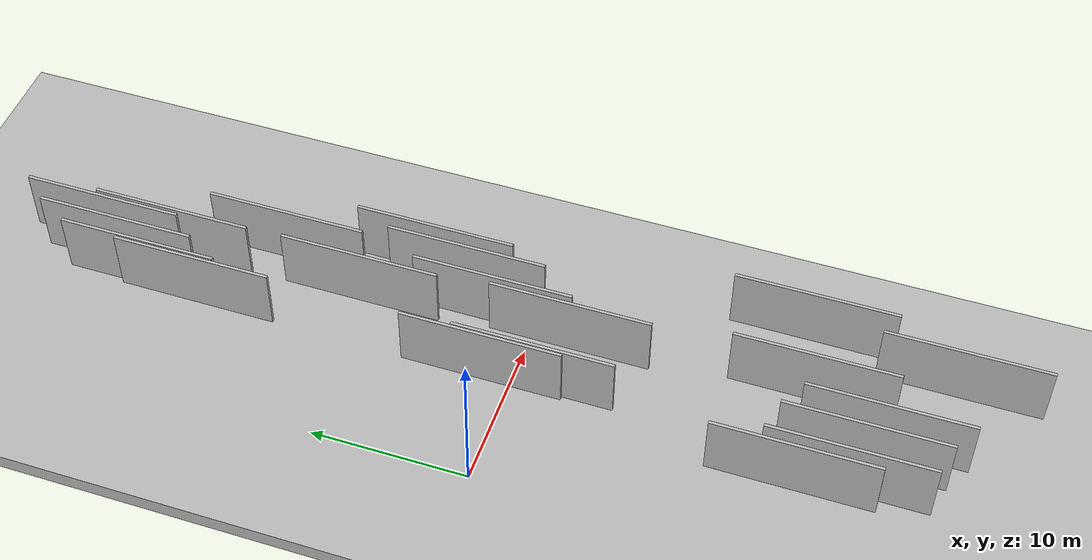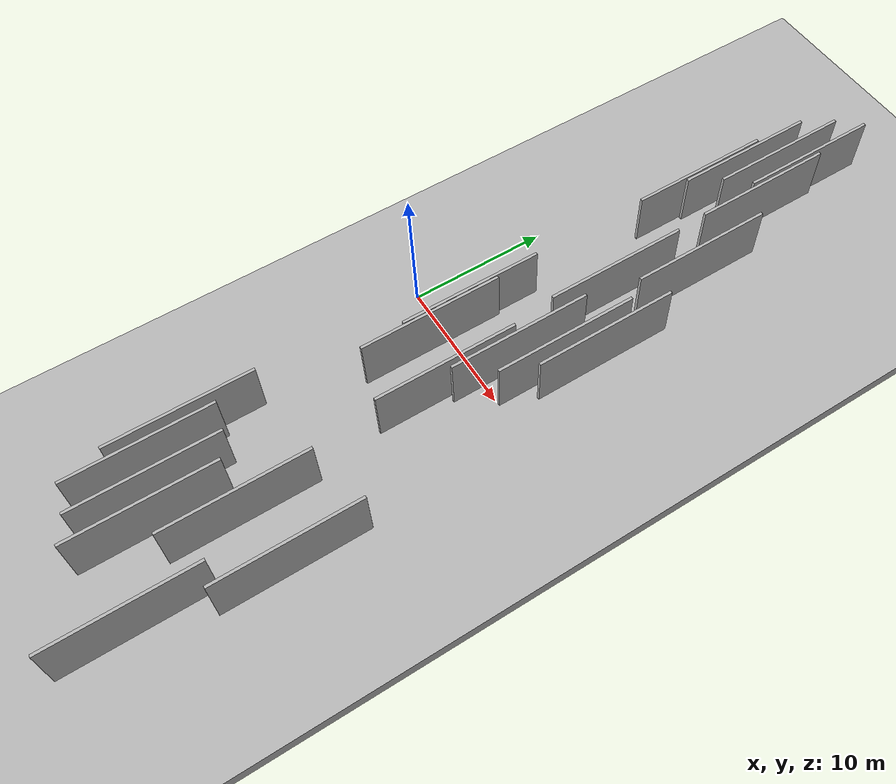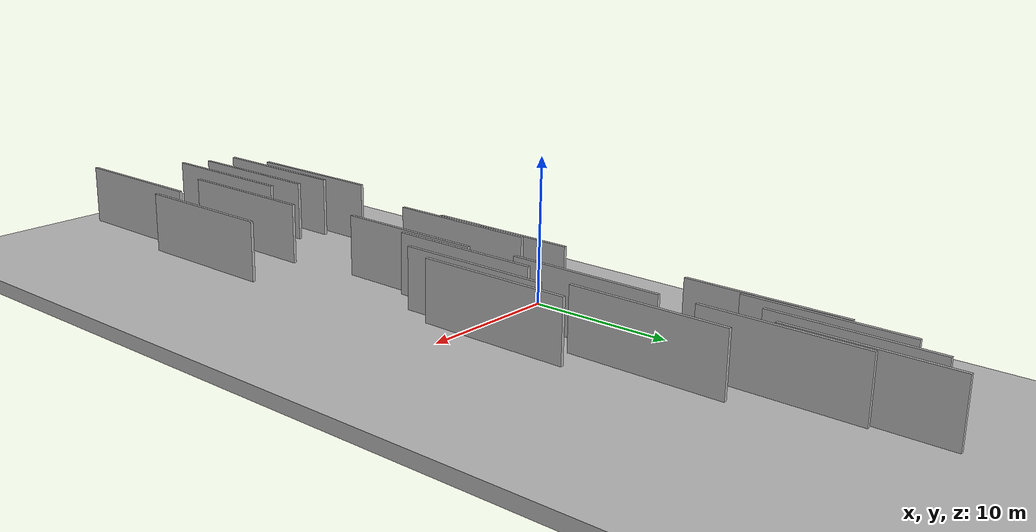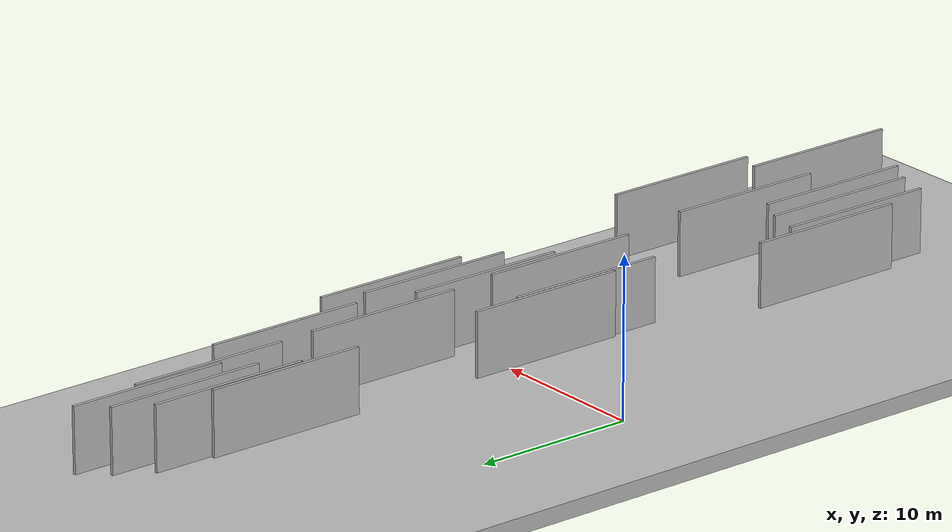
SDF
<?xml version="1.0" encoding="utf-8"?>

<sdf version="1.6">

   <world name="default">

      <gui fullscreen="0">

         <camera name="user_camera">

            <pose>-15 0 4.57585 0 0 0</pose>

            <view_controller>orbit</view_controller>

         </camera>

      </gui>

      <scene>

         <sky>

           <clouds>

             <speed>12</speed>

           </clouds>

         </sky>

         <ambient>0.4 0.4 0.4 1</ambient>

         <background>0.7 0.7 0.7 1</background>

         <shadows>1</shadows>

      </scene>

      <gravity>0 0 -9.8066</gravity>

      <magnetic_field>6e-06 2.3e-05 -4.2e-05</magnetic_field>

      <physics default="0" name="default_physics" type="ode">

         <ode>

            <solver>

               <type>quick</type>

               <iters>10</iters>

               <sor>1.0</sor>

               <use_dynamic_moi_rescaling>0</use_dynamic_moi_rescaling>

            </solver>

            <constraints>

               <cfm>0</cfm>

               <erp>0.2</erp>

               <contact_max_correcting_vel>100</contact_max_correcting_vel>

               <contact_surface_layer>0.001</contact_surface_layer>

            </constraints>

         </ode>

         <max_step_size>0.004</max_step_size>

         <real_time_factor>1</real_time_factor>

         <real_time_update_rate>250</real_time_update_rate>

      </physics>

      <light name="sun" type="directional">

         <cast_shadows>1</cast_shadows>

         <pose>0 0 10 0 0 0</pose>

         <diffuse>0.8 0.8 0.8 1</diffuse>

         <specular>0.2 0.2 0.2 1</specular>

         <attenuation>

            <range>1000</range>

            <constant>0.9</constant>

            <linear>0.01</linear>

            <quadratic>0.001</quadratic>

         </attenuation>

         <direction>-0.5 0.1 -0.9</direction>

      </light>

      <include>

         <name>ground_plane_1</name>

         <uri>model://HANNAS_ground_plane</uri>

         <pose>0 0 0  0 0 0</pose>

      </include>

      <include>

         <name>ground_plane_2</name>

         <uri>model://HANNAS_ground_plane</uri>

         <pose>100 0 0  0 0 0</pose>

      </include>

      <model name="HANNAS_wall_1">

         <static>1</static>

         <pose frame="">10.1915 -17.6369 2.5 0.000000 0.000000 1.570796</pose>

         <link name="link">

            <pose frame="">0 0 2.00 0 0 0</pose>

            <collision name="collision">

               <geometry>

                  <box>

                     <size>10.00 0.2 4.00</size>

                  </box>

               </geometry>

               <max_contacts>10</max_contacts>

               <surface>

                  <contact>

                     <ode/>

                  </contact>

                  <bounce/>

                  <friction>

                     <torsional>

                        <ode/>

                     </torsional>

                     <ode/>

                  </friction>

               </surface>

            </collision>

            <visual name="visual">

               <cast_shadows>0</cast_shadows>

               <geometry>

                  <box>

                     <size>10.00 0.2 4.00</size>

                  </box>

               </geometry>

               <material>

                  <script>

                     <uri>model://HANNAS_wall/materials/scripts</uri>

                     <uri>model://HANNAS_wall/materials/textures</uri>

                     <name>vrc/HANNAS_wall</name>

                  </script>

               </material>

            </visual>

            <self_collide>0</self_collide>

            <enable_wind>0</enable_wind>

            <kinematic>0</kinematic>

         </link>

      </model>

      <model name="HANNAS_wall_2">

         <static>1</static>

         <pose frame="">13.1539 -25.8379 2.5 0.000000 0.000000 1.570796</pose>

         <link name="link">

            <pose frame="">0 0 2.00 0 0 0</pose>

            <collision name="collision">

               <geometry>

                  <box>

                     <size>10.00 0.2 4.00</size>

                  </box>

               </geometry>

               <max_contacts>10</max_contacts>

               <surface>

                  <contact>

                     <ode/>

                  </contact>

                  <bounce/>

                  <friction>

                     <torsional>

                        <ode/>

                     </torsional>

                     <ode/>

                  </friction>

               </surface>

            </collision>

            <visual name="visual">

               <cast_shadows>0</cast_shadows>

               <geometry>

                  <box>

                     <size>10.00 0.2 4.00</size>

                  </box>

               </geometry>

               <material>

                  <script>

                     <uri>model://HANNAS_wall/materials/scripts</uri>

                     <uri>model://HANNAS_wall/materials/textures</uri>

                     <name>vrc/HANNAS_wall</name>

                  </script>

               </material>

            </visual>

            <self_collide>0</self_collide>

            <enable_wind>0</enable_wind>

            <kinematic>0</kinematic>

         </link>

      </model>

      <model name="HANNAS_wall_3">

         <static>1</static>

         <pose frame="">5.4535 19.5235 2.5 0.000000 0.000000 1.570796</pose>

         <link name="link">

            <pose frame="">0 0 2.00 0 0 0</pose>

            <collision name="collision">

               <geometry>

                  <box>

                     <size>10.00 0.2 4.00</size>

                  </box>

               </geometry>

               <max_contacts>10</max_contacts>

               <surface>

                  <contact>

                     <ode/>

                  </contact>

                  <bounce/>

                  <friction>

                     <torsional>

                        <ode/>

                     </torsional>

                     <ode/>

                  </friction>

               </surface>

            </collision>

            <visual name="visual">

               <cast_shadows>0</cast_shadows>

               <geometry>

                  <box>

                     <size>10.00 0.2 4.00</size>

                  </box>

               </geometry>

               <material>

                  <script>

                     <uri>model://HANNAS_wall/materials/scripts</uri>

                     <uri>model://HANNAS_wall/materials/textures</uri>

                     <name>vrc/HANNAS_wall</name>

                  </script>

               </material>

            </visual>

            <self_collide>0</self_collide>

            <enable_wind>0</enable_wind>

            <kinematic>0</kinematic>

         </link>

      </model>

      <model name="HANNAS_wall_4">

         <static>1</static>

         <pose frame="">14.6187 -16.5782 2.5 0.000000 0.000000 1.570796</pose>

         <link name="link">

            <pose frame="">0 0 2.00 0 0 0</pose>

            <collision name="collision">

               <geometry>

                  <box>

                     <size>10.00 0.2 4.00</size>

                  </box>

               </geometry>

               <max_contacts>10</max_contacts>

               <surface>

                  <contact>

                     <ode/>

                  </contact>

                  <bounce/>

                  <friction>

                     <torsional>

                        <ode/>

                     </torsional>

                     <ode/>

                  </friction>

               </surface>

            </collision>

            <visual name="visual">

               <cast_shadows>0</cast_shadows>

               <geometry>

                  <box>

                     <size>10.00 0.2 4.00</size>

                  </box>

               </geometry>

               <material>

                  <script>

                     <uri>model://HANNAS_wall/materials/scripts</uri>

                     <uri>model://HANNAS_wall/materials/textures</uri>

                     <name>vrc/HANNAS_wall</name>

                  </script>

               </material>

            </visual>

            <self_collide>0</self_collide>

            <enable_wind>0</enable_wind>

            <kinematic>0</kinematic>

         </link>

      </model>

      <model name="HANNAS_wall_5">

         <static>1</static>

         <pose frame="">9.8254 1.9844 2.5 0.000000 0.000000 1.570796</pose>

         <link name="link">

            <pose frame="">0 0 2.00 0 0 0</pose>

            <collision name="collision">

               <geometry>

                  <box>

                     <size>10.00 0.2 4.00</size>

                  </box>

               </geometry>

               <max_contacts>10</max_contacts>

               <surface>

                  <contact>

                     <ode/>

                  </contact>

                  <bounce/>

                  <friction>

                     <torsional>

                        <ode/>

                     </torsional>

                     <ode/>

                  </friction>

               </surface>

            </collision>

            <visual name="visual">

               <cast_shadows>0</cast_shadows>

               <geometry>

                  <box>

                     <size>10.00 0.2 4.00</size>

                  </box>

               </geometry>

               <material>

                  <script>

                     <uri>model://HANNAS_wall/materials/scripts</uri>

                     <uri>model://HANNAS_wall/materials/textures</uri>

                     <name>vrc/HANNAS_wall</name>

                  </script>

               </material>

            </visual>

            <self_collide>0</self_collide>

            <enable_wind>0</enable_wind>

            <kinematic>0</kinematic>

         </link>

      </model>

      <model name="HANNAS_wall_6">

         <static>1</static>

         <pose frame="">5.7370 23.1945 2.5 0.000000 0.000000 1.570796</pose>

         <link name="link">

            <pose frame="">0 0 2.00 0 0 0</pose>

            <collision name="collision">

               <geometry>

                  <box>

                     <size>10.00 0.2 4.00</size>

                  </box>

               </geometry>

               <max_contacts>10</max_contacts>

               <surface>

                  <contact>

                     <ode/>

                  </contact>

                  <bounce/>

                  <friction>

                     <torsional>

                        <ode/>

                     </torsional>

                     <ode/>

                  </friction>

               </surface>

            </collision>

            <visual name="visual">

               <cast_shadows>0</cast_shadows>

               <geometry>

                  <box>

                     <size>10.00 0.2 4.00</size>

                  </box>

               </geometry>

               <material>

                  <script>

                     <uri>model://HANNAS_wall/materials/scripts</uri>

                     <uri>model://HANNAS_wall/materials/textures</uri>

                     <name>vrc/HANNAS_wall</name>

                  </script>

               </material>

            </visual>

            <self_collide>0</self_collide>

            <enable_wind>0</enable_wind>

            <kinematic>0</kinematic>

         </link>

      </model>

      <model name="HANNAS_wall_7">

         <static>1</static>

         <pose frame="">6.9588 25.2587 2.5 0.000000 0.000000 1.570796</pose>

         <link name="link">

            <pose frame="">0 0 2.00 0 0 0</pose>

            <collision name="collision">

               <geometry>

                  <box>

                     <size>10.00 0.2 4.00</size>

                  </box>

               </geometry>

               <max_contacts>10</max_contacts>

               <surface>

                  <contact>

                     <ode/>

                  </contact>

                  <bounce/>

                  <friction>

                     <torsional>

                        <ode/>

                     </torsional>

                     <ode/>

                  </friction>

               </surface>

            </collision>

            <visual name="visual">

               <cast_shadows>0</cast_shadows>

               <geometry>

                  <box>

                     <size>10.00 0.2 4.00</size>

                  </box>

               </geometry>

               <material>

                  <script>

                     <uri>model://HANNAS_wall/materials/scripts</uri>

                     <uri>model://HANNAS_wall/materials/textures</uri>

                     <name>vrc/HANNAS_wall</name>

                  </script>

               </material>

            </visual>

            <self_collide>0</self_collide>

            <enable_wind>0</enable_wind>

            <kinematic>0</kinematic>

         </link>

      </model>

      <model name="HANNAS_wall_8">

         <static>1</static>

         <pose frame="">12.5644 6.6030 2.5 0.000000 0.000000 1.570796</pose>

         <link name="link">

            <pose frame="">0 0 2.00 0 0 0</pose>

            <collision name="collision">

               <geometry>

                  <box>

                     <size>10.00 0.2 4.00</size>

                  </box>

               </geometry>

               <max_contacts>10</max_contacts>

               <surface>

                  <contact>

                     <ode/>

                  </contact>

                  <bounce/>

                  <friction>

                     <torsional>

                        <ode/>

                     </torsional>

                     <ode/>

                  </friction>

               </surface>

            </collision>

            <visual name="visual">

               <cast_shadows>0</cast_shadows>

               <geometry>

                  <box>

                     <size>10.00 0.2 4.00</size>

                  </box>

               </geometry>

               <material>

                  <script>

                     <uri>model://HANNAS_wall/materials/scripts</uri>

                     <uri>model://HANNAS_wall/materials/textures</uri>

                     <name>vrc/HANNAS_wall</name>

                  </script>

               </material>

            </visual>

            <self_collide>0</self_collide>

            <enable_wind>0</enable_wind>

            <kinematic>0</kinematic>

         </link>

      </model>

      <model name="HANNAS_wall_9">

         <static>1</static>

         <pose frame="">10.6822 15.5654 2.5 0.000000 0.000000 1.570796</pose>

         <link name="link">

            <pose frame="">0 0 2.00 0 0 0</pose>

            <collision name="collision">

               <geometry>

                  <box>

                     <size>10.00 0.2 4.00</size>

                  </box>

               </geometry>

               <max_contacts>10</max_contacts>

               <surface>

                  <contact>

                     <ode/>

                  </contact>

                  <bounce/>

                  <friction>

                     <torsional>

                        <ode/>

                     </torsional>

                     <ode/>

                  </friction>

               </surface>

            </collision>

            <visual name="visual">

               <cast_shadows>0</cast_shadows>

               <geometry>

                  <box>

                     <size>10.00 0.2 4.00</size>

                  </box>

               </geometry>

               <material>

                  <script>

                     <uri>model://HANNAS_wall/materials/scripts</uri>

                     <uri>model://HANNAS_wall/materials/textures</uri>

                     <name>vrc/HANNAS_wall</name>

                  </script>

               </material>

            </visual>

            <self_collide>0</self_collide>

            <enable_wind>0</enable_wind>

            <kinematic>0</kinematic>

         </link>

      </model>

      <model name="HANNAS_wall_10">

         <static>1</static>

         <pose frame="">6.2647 -21.4717 2.5 0.000000 0.000000 1.570796</pose>

         <link name="link">

            <pose frame="">0 0 2.00 0 0 0</pose>

            <collision name="collision">

               <geometry>

                  <box>

                     <size>10.00 0.2 4.00</size>

                  </box>

               </geometry>

               <max_contacts>10</max_contacts>

               <surface>

                  <contact>

                     <ode/>

                  </contact>

                  <bounce/>

                  <friction>

                     <torsional>

                        <ode/>

                     </torsional>

                     <ode/>

                  </friction>

               </surface>

            </collision>

            <visual name="visual">

               <cast_shadows>0</cast_shadows>

               <geometry>

                  <box>

                     <size>10.00 0.2 4.00</size>

                  </box>

               </geometry>

               <material>

                  <script>

                     <uri>model://HANNAS_wall/materials/scripts</uri>

                     <uri>model://HANNAS_wall/materials/textures</uri>

                     <name>vrc/HANNAS_wall</name>

                  </script>

               </material>

            </visual>

            <self_collide>0</self_collide>

            <enable_wind>0</enable_wind>

            <kinematic>0</kinematic>

         </link>

      </model>

      <model name="HANNAS_wall_11">

         <static>1</static>

         <pose frame="">7.9480 -22.4213 2.5 0.000000 0.000000 1.570796</pose>

         <link name="link">

            <pose frame="">0 0 2.00 0 0 0</pose>

            <collision name="collision">

               <geometry>

                  <box>

                     <size>10.00 0.2 4.00</size>

                  </box>

               </geometry>

               <max_contacts>10</max_contacts>

               <surface>

                  <contact>

                     <ode/>

                  </contact>

                  <bounce/>

                  <friction>

                     <torsional>

                        <ode/>

                     </torsional>

                     <ode/>

                  </friction>

               </surface>

            </collision>

            <visual name="visual">

               <cast_shadows>0</cast_shadows>

               <geometry>

                  <box>

                     <size>10.00 0.2 4.00</size>

                  </box>

               </geometry>

               <material>

                  <script>

                     <uri>model://HANNAS_wall/materials/scripts</uri>

                     <uri>model://HANNAS_wall/materials/textures</uri>

                     <name>vrc/HANNAS_wall</name>

                  </script>

               </material>

            </visual>

            <self_collide>0</self_collide>

            <enable_wind>0</enable_wind>

            <kinematic>0</kinematic>

         </link>

      </model>

      <model name="HANNAS_wall_12">

         <static>1</static>

         <pose frame="">8.3317 26.7676 2.5 0.000000 0.000000 1.570796</pose>

         <link name="link">

            <pose frame="">0 0 2.00 0 0 0</pose>

            <collision name="collision">

               <geometry>

                  <box>

                     <size>10.00 0.2 4.00</size>

                  </box>

               </geometry>

               <max_contacts>10</max_contacts>

               <surface>

                  <contact>

                     <ode/>

                  </contact>

                  <bounce/>

                  <friction>

                     <torsional>

                        <ode/>

                     </torsional>

                     <ode/>

                  </friction>

               </surface>

            </collision>

            <visual name="visual">

               <cast_shadows>0</cast_shadows>

               <geometry>

                  <box>

                     <size>10.00 0.2 4.00</size>

                  </box>

               </geometry>

               <material>

                  <script>

                     <uri>model://HANNAS_wall/materials/scripts</uri>

                     <uri>model://HANNAS_wall/materials/textures</uri>

                     <name>vrc/HANNAS_wall</name>

                  </script>

               </material>

            </visual>

            <self_collide>0</self_collide>

            <enable_wind>0</enable_wind>

            <kinematic>0</kinematic>

         </link>

      </model>

      <model name="HANNAS_wall_13">

         <static>1</static>

         <pose frame="">11.5976 4.2517 2.5 0.000000 0.000000 1.570796</pose>

         <link name="link">

            <pose frame="">0 0 2.00 0 0 0</pose>

            <collision name="collision">

               <geometry>

                  <box>

                     <size>10.00 0.2 4.00</size>

                  </box>

               </geometry>

               <max_contacts>10</max_contacts>

               <surface>

                  <contact>

                     <ode/>

                  </contact>

                  <bounce/>

                  <friction>

                     <torsional>

                        <ode/>

                     </torsional>

                     <ode/>

                  </friction>

               </surface>

            </collision>

            <visual name="visual">

               <cast_shadows>0</cast_shadows>

               <geometry>

                  <box>

                     <size>10.00 0.2 4.00</size>

                  </box>

               </geometry>

               <material>

                  <script>

                     <uri>model://HANNAS_wall/materials/scripts</uri>

                     <uri>model://HANNAS_wall/materials/textures</uri>

                     <name>vrc/HANNAS_wall</name>

                  </script>

               </material>

            </visual>

            <self_collide>0</self_collide>

            <enable_wind>0</enable_wind>

            <kinematic>0</kinematic>

         </link>

      </model>

      <model name="HANNAS_wall_14">

         <static>1</static>

         <pose frame="">9.2960 -3.0367 2.5 0.000000 0.000000 1.570796</pose>

         <link name="link">

            <pose frame="">0 0 2.00 0 0 0</pose>

            <collision name="collision">

               <geometry>

                  <box>

                     <size>10.00 0.2 4.00</size>

                  </box>

               </geometry>

               <max_contacts>10</max_contacts>

               <surface>

                  <contact>

                     <ode/>

                  </contact>

                  <bounce/>

                  <friction>

                     <torsional>

                        <ode/>

                     </torsional>

                     <ode/>

                  </friction>

               </surface>

            </collision>

            <visual name="visual">

               <cast_shadows>0</cast_shadows>

               <geometry>

                  <box>

                     <size>10.00 0.2 4.00</size>

                  </box>

               </geometry>

               <material>

                  <script>

                     <uri>model://HANNAS_wall/materials/scripts</uri>

                     <uri>model://HANNAS_wall/materials/textures</uri>

                     <name>vrc/HANNAS_wall</name>

                  </script>

               </material>

            </visual>

            <self_collide>0</self_collide>

            <enable_wind>0</enable_wind>

            <kinematic>0</kinematic>

         </link>

      </model>

      <model name="HANNAS_wall_15">

         <static>1</static>

         <pose frame="">8.7042 22.3208 2.5 0.000000 0.000000 1.570796</pose>

         <link name="link">

            <pose frame="">0 0 2.00 0 0 0</pose>

            <collision name="collision">

               <geometry>

                  <box>

                     <size>10.00 0.2 4.00</size>

                  </box>

               </geometry>

               <max_contacts>10</max_contacts>

               <surface>

                  <contact>

                     <ode/>

                  </contact>

                  <bounce/>

                  <friction>

                     <torsional>

                        <ode/>

                     </torsional>

                     <ode/>

                  </friction>

               </surface>

            </collision>

            <visual name="visual">

               <cast_shadows>0</cast_shadows>

               <geometry>

                  <box>

                     <size>10.00 0.2 4.00</size>

                  </box>

               </geometry>

               <material>

                  <script>

                     <uri>model://HANNAS_wall/materials/scripts</uri>

                     <uri>model://HANNAS_wall/materials/textures</uri>

                     <name>vrc/HANNAS_wall</name>

                  </script>

               </material>

            </visual>

            <self_collide>0</self_collide>

            <enable_wind>0</enable_wind>

            <kinematic>0</kinematic>

         </link>

      </model>

      <model name="HANNAS_wall_16">

         <static>1</static>

         <pose frame="">8.8288 10.0887 2.5 0.000000 0.000000 1.570796</pose>

         <link name="link">

            <pose frame="">0 0 2.00 0 0 0</pose>

            <collision name="collision">

               <geometry>

                  <box>

                     <size>10.00 0.2 4.00</size>

                  </box>

               </geometry>

               <max_contacts>10</max_contacts>

               <surface>

                  <contact>

                     <ode/>

                  </contact>

                  <bounce/>

                  <friction>

                     <torsional>

                        <ode/>

                     </torsional>

                     <ode/>

                  </friction>

               </surface>

            </collision>

            <visual name="visual">

               <cast_shadows>0</cast_shadows>

               <geometry>

                  <box>

                     <size>10.00 0.2 4.00</size>

                  </box>

               </geometry>

               <material>

                  <script>

                     <uri>model://HANNAS_wall/materials/scripts</uri>

                     <uri>model://HANNAS_wall/materials/textures</uri>

                     <name>vrc/HANNAS_wall</name>

                  </script>

               </material>

            </visual>

            <self_collide>0</self_collide>

            <enable_wind>0</enable_wind>

            <kinematic>0</kinematic>

         </link>

      </model>

      <model name="HANNAS_wall_17">

         <static>1</static>

         <pose frame="">3.5034 -18.0280 2.5 0.000000 0.000000 1.570796</pose>

         <link name="link">

            <pose frame="">0 0 2.00 0 0 0</pose>

            <collision name="collision">

               <geometry>

                  <box>

                     <size>10.00 0.2 4.00</size>

                  </box>

               </geometry>

               <max_contacts>10</max_contacts>

               <surface>

                  <contact>

                     <ode/>

                  </contact>

                  <bounce/>

                  <friction>

                     <torsional>

                        <ode/>

                     </torsional>

                     <ode/>

                  </friction>

               </surface>

            </collision>

            <visual name="visual">

               <cast_shadows>0</cast_shadows>

               <geometry>

                  <box>

                     <size>10.00 0.2 4.00</size>

                  </box>

               </geometry>

               <material>

                  <script>

                     <uri>model://HANNAS_wall/materials/scripts</uri>

                     <uri>model://HANNAS_wall/materials/textures</uri>

                     <name>vrc/HANNAS_wall</name>

                  </script>

               </material>

            </visual>

            <self_collide>0</self_collide>

            <enable_wind>0</enable_wind>

            <kinematic>0</kinematic>

         </link>

      </model>

      <model name="HANNAS_wall_18">

         <static>1</static>

         <pose frame="">4.3147 -20.9890 2.5 0.000000 0.000000 1.570796</pose>

         <link name="link">

            <pose frame="">0 0 2.00 0 0 0</pose>

            <collision name="collision">

               <geometry>

                  <box>

                     <size>10.00 0.2 4.00</size>

                  </box>

               </geometry>

               <max_contacts>10</max_contacts>

               <surface>

                  <contact>

                     <ode/>

                  </contact>

                  <bounce/>

                  <friction>

                     <torsional>

                        <ode/>

                     </torsional>

                     <ode/>

                  </friction>

               </surface>

            </collision>

            <visual name="visual">

               <cast_shadows>0</cast_shadows>

               <geometry>

                  <box>

                     <size>10.00 0.2 4.00</size>

                  </box>

               </geometry>

               <material>

                  <script>

                     <uri>model://HANNAS_wall/materials/scripts</uri>

                     <uri>model://HANNAS_wall/materials/textures</uri>

                     <name>vrc/HANNAS_wall</name>

                  </script>

               </material>

            </visual>

            <self_collide>0</self_collide>

            <enable_wind>0</enable_wind>

            <kinematic>0</kinematic>

         </link>

      </model>

      <model name="HANNAS_wall_19">

         <static>1</static>

         <pose frame="">5.6394 -1.9353 2.5 0.000000 0.000000 1.570796</pose>

         <link name="link">

            <pose frame="">0 0 2.00 0 0 0</pose>

            <collision name="collision">

               <geometry>

                  <box>

                     <size>10.00 0.2 4.00</size>

                  </box>

               </geometry>

               <max_contacts>10</max_contacts>

               <surface>

                  <contact>

                     <ode/>

                  </contact>

                  <bounce/>

                  <friction>

                     <torsional>

                        <ode/>

                     </torsional>

                     <ode/>

                  </friction>

               </surface>

            </collision>

            <visual name="visual">

               <cast_shadows>0</cast_shadows>

               <geometry>

                  <box>

                     <size>10.00 0.2 4.00</size>

                  </box>

               </geometry>

               <material>

                  <script>

                     <uri>model://HANNAS_wall/materials/scripts</uri>

                     <uri>model://HANNAS_wall/materials/textures</uri>

                     <name>vrc/HANNAS_wall</name>

                  </script>

               </material>

            </visual>

            <self_collide>0</self_collide>

            <enable_wind>0</enable_wind>

            <kinematic>0</kinematic>

         </link>

      </model>

      <model name="HANNAS_wall_20">

         <static>1</static>

         <pose frame="">5.4048 1.1790 2.5 0.000000 0.000000 1.570796</pose>

         <link name="link">

            <pose frame="">0 0 2.00 0 0 0</pose>

            <collision name="collision">

               <geometry>

                  <box>

                     <size>10.00 0.2 4.00</size>

                  </box>

               </geometry>

               <max_contacts>10</max_contacts>

               <surface>

                  <contact>

                     <ode/>

                  </contact>

                  <bounce/>

                  <friction>

                     <torsional>

                        <ode/>

                     </torsional>

                     <ode/>

                  </friction>

               </surface>

            </collision>

            <visual name="visual">

               <cast_shadows>0</cast_shadows>

               <geometry>

                  <box>

                     <size>10.00 0.2 4.00</size>

                  </box>

               </geometry>

               <material>

                  <script>

                     <uri>model://HANNAS_wall/materials/scripts</uri>

                     <uri>model://HANNAS_wall/materials/textures</uri>

                     <name>vrc/HANNAS_wall</name>

                  </script>

               </material>

            </visual>

            <self_collide>0</self_collide>

            <enable_wind>0</enable_wind>

            <kinematic>0</kinematic>

         </link>

      </model>

   </world>

</sdf>

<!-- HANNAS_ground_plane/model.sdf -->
<sdf version="1.4">
<model name="HANNAS_ground_plane">
  <static>true</static>
    <link name="link">
      <collision name="collision">
        <geometry>
          <plane>
            <normal>0 0 1</normal>
            <size>1000 1000</size>
          </plane>
        </geometry>
        <surface>
          <friction>
            <ode>
              <mu>100</mu>
              <mu2>50</mu2>
            </ode>
          </friction>
        </surface>
      </collision>
      <visual name="visual">
        <cast_shadows>false</cast_shadows>
        <geometry>
          <plane>
            <normal>0 0 1</normal>
            <size>1000 1000</size>
          </plane>
        </geometry>
        <material>
          <script>
            <uri>model://HANNAS_ground_plane/materials/scripts/HANNAS_ground_plane.material</uri>
	    <uri>model://HANNAS_ground_plane/materials/textures</uri>
            <name>HANNASGroundPlane/Image</name>
          </script>
        </material>
      </visual>
    </link>
  </model>
</sdf>
